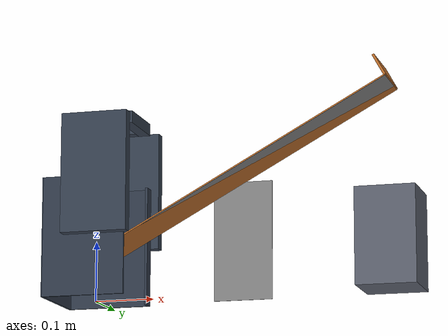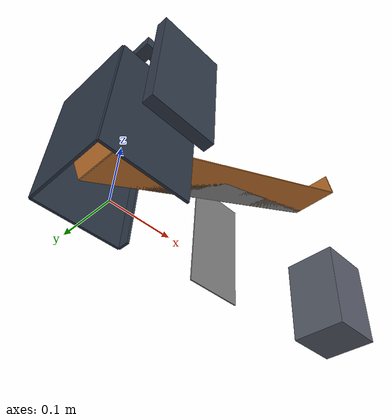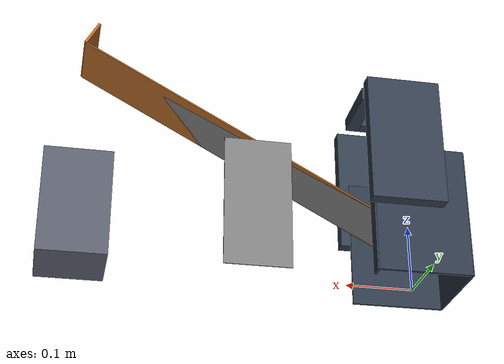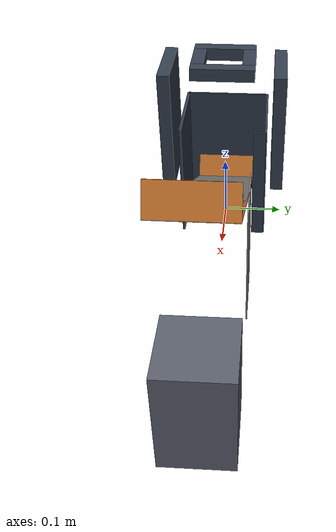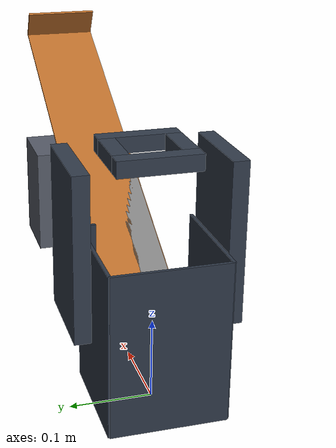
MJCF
<?xml version="1.0" encoding="UTF-8"?>
<mujoco model="libero_vlabench_seesaw_primitive">
  <compiler angle="radian" autolimits="true"/>
  <default>
    <default class="visual">
      <geom group="1" contype="0" conaffinity="0"/>
    </default>
    <default class="collision">
      <geom group="0" solref="0.001 1" solimp="0.998 0.998 0.001"/>
    </default>
  </default>
  <worldbody>
    <body>
      <body name="object">
        <geom name="base_front_visual" type="box" class="visual" pos="0 0.07 0.10"
              size="0.07 0.002 0.10" rgba="0.18 0.22 0.28 1"/>
        <geom name="base_back_visual" type="box" class="visual" pos="0 -0.07 0.10"
              size="0.07 0.002 0.10" rgba="0.18 0.22 0.28 1"/>
        <geom name="base_right_visual" type="box" class="visual" pos="0.07 0.06 0.10"
              size="0.002 0.01 0.10" rgba="0.18 0.22 0.28 1"/>
        <geom name="base_left_visual" type="box" class="visual" pos="-0.07 0 0.10"
              size="0.002 0.07 0.10" rgba="0.18 0.22 0.28 1"/>
        <geom name="base_front_collision" type="box" class="collision" pos="0 0.07 0.10"
              size="0.07 0.002 0.10"/>
        <geom name="base_back_collision" type="box" class="collision" pos="0 -0.07 0.10"
              size="0.07 0.002 0.10"/>
        <geom name="base_right_collision" type="box" class="collision" pos="0.07 0.06 0.10"
              size="0.002 0.01 0.10"/>
        <geom name="base_left_collision" type="box" class="collision" pos="-0.07 0 0.10"
              size="0.002 0.07 0.10"/>
        <body name="seesaw" pos="0.24 0 0">
          <geom name="support_visual" type="box" class="visual" pos="0 0.05 0.10"
                size="0.05 0.001 0.10" rgba="0.30 0.45 0.45 0.75"/>
          <geom name="support_collision" type="box" class="collision" pos="0 0.05 0.10"
                size="0.05 0.001 0.10"/>
          <body name="board" pos="0 0 0.198" euler="0 -0.5 0">
            <joint name="seesaw_hinge" type="hinge" pos="0 0 0"
                 axis="0 1 0" range="0 0.6" limited="true" damping="1"
                 stiffness="0.6" springref="0"/>
            <!-- 0.60 m long board, matching the external half-size 0.30. -->
            <site name="seesaw_left_region" type="box" pos="-0.24 0 0.006" quat="1 0 0 0"
                  size="0.055 0.040 0.012" rgba="0 0 0 0"/>
            <site name="seesaw_right_region" type="box" pos="0.24 0 0.006" quat="1 0 0 0"
                  size="0.055 0.040 0.012" rgba="0 0 0 0"/>
            <geom name="board_visual" type="box" class="visual" pos="0 0 0"
                  size="0.30 0.0498 0.001" rgba="0.72 0.42 0.16 1"/>
            <geom name="board_collision" type="box" class="collision" pos="0 0 0"
                  size="0.30 0.049 0.001"/>
            <geom name="board_end_left" type="box" class="visual" pos="-0.30 0 0.02"
                  size="0.002 0.0498 0.02" rgba="0.72 0.42 0.16 1"/>
            <geom name="board_end_right" type="box" class="visual" pos="0.30 0 0.02"
                  size="0.002 0.0498 0.02" rgba="0.72 0.42 0.16 1"/>
            <geom name="board_end_left_collision" type="box" class="collision" pos="-0.30 0 0.02"
                  size="0.002 0.0498 0.02"/>
            <geom name="board_end_right_collision" type="box" class="collision" pos="0.30 0 0.02"
                  size="0.002 0.0498 0.02"/>
            <site name="seesaw_center" pos="0 0 0.02" size="0.01" rgba="0 0 0 0"/>
          </body>
        </body>
        <body name="rest" pos="0.50 0 0.08">
          <geom name="rest_visual" type="box" class="visual" pos="0 0 0"
                size="0.05 0.05 0.08" rgba="0.35 0.37 0.42 1"/>
          <geom name="rest_collision" type="box" class="collision" pos="0 0 0"
                size="0.05 0.05 0.08"/>
        </body>
        <body name="target_guard" pos="0.026 0 0">
          <geom name="target_guard_front_visual" type="box" class="visual"
                pos="0 0.090 0.20" size="0.056 0.010 0.10"
                rgba="0.20 0.24 0.30 0.90"/>
          <geom name="target_guard_back_visual" type="box" class="visual"
                pos="0 -0.090 0.20" size="0.056 0.010 0.10"
                rgba="0.20 0.24 0.30 0.90"/>
          <geom name="target_guard_front_collision" type="box" class="collision"
                pos="0 0.090 0.20" size="0.056 0.010 0.10"/>
          <geom name="target_guard_back_collision" type="box" class="collision"
                pos="0 -0.090 0.20" size="0.056 0.010 0.10"/>
          <!-- Four roof bars leave a 60 mm square escape aperture. -->
          <geom name="target_guard_roof_left_visual" type="box" class="visual"
                pos="-0.040 0 0.30" size="0.010 0.050 0.010"
                rgba="0.20 0.24 0.30 0.90"/>
          <geom name="target_guard_roof_right_visual" type="box" class="visual"
                pos="0.040 0 0.30" size="0.010 0.050 0.010"
                rgba="0.20 0.24 0.30 0.90"/>
          <geom name="target_guard_roof_front_visual" type="box" class="visual"
                pos="0 0.040 0.30" size="0.030 0.010 0.010"
                rgba="0.20 0.24 0.30 0.90"/>
          <geom name="target_guard_roof_back_visual" type="box" class="visual"
                pos="0 -0.040 0.30" size="0.030 0.010 0.010"
                rgba="0.20 0.24 0.30 0.90"/>
          <geom name="target_guard_roof_left_collision" type="box" class="collision"
                pos="-0.040 0 0.30" size="0.010 0.050 0.010"/>
          <geom name="target_guard_roof_right_collision" type="box" class="collision"
                pos="0.040 0 0.30" size="0.010 0.050 0.010"/>
          <geom name="target_guard_roof_front_collision" type="box" class="collision"
                pos="0 0.040 0.30" size="0.030 0.010 0.010"/>
          <geom name="target_guard_roof_back_collision" type="box" class="collision"
                pos="0 -0.040 0.30" size="0.030 0.010 0.010"/>
        </body>
      </body>
      <site name="bottom_site" pos="0 0 0" size="0.005" rgba="0 0 0 0"/>
      <site name="top_site" pos="0.24 0 0.40" size="0.005" rgba="0 0 0 0"/>
      <site name="horizontal_radius_site" pos="0.55 0 0" size="0.005" rgba="0 0 0 0"/>
    </body>
  </worldbody>
</mujoco>
